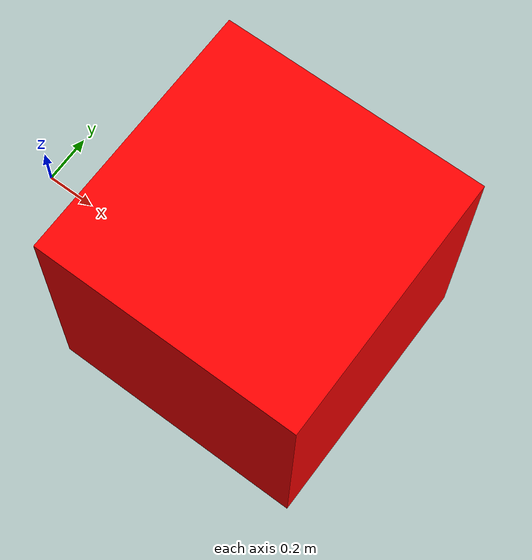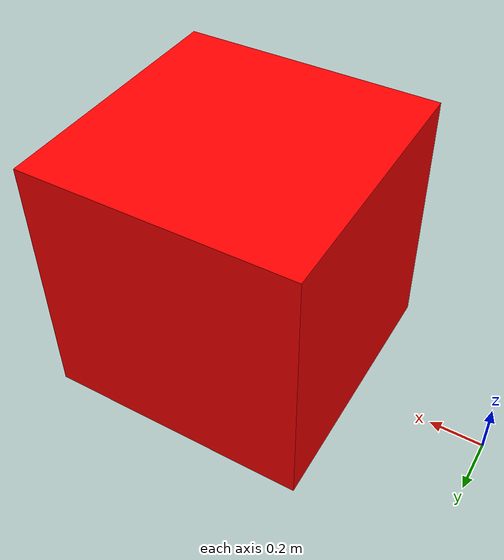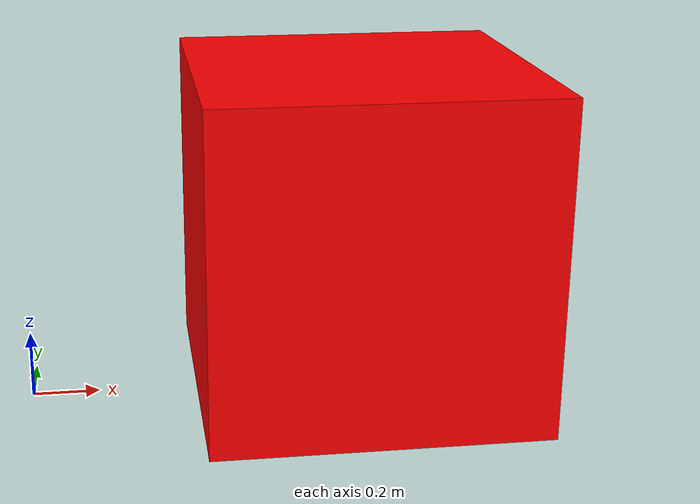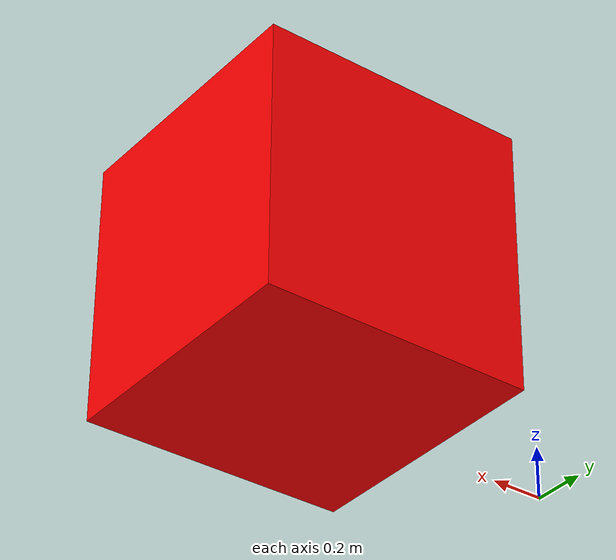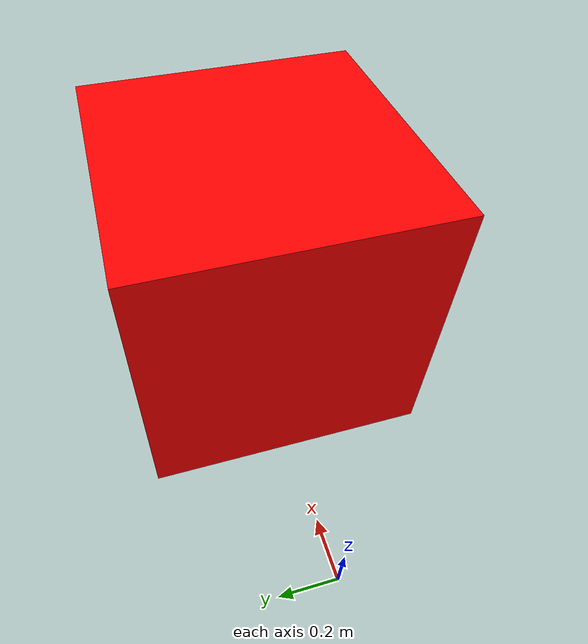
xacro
<?xml version="1.0"?>

<robot xmlns:xacro="http://www.ros.org/wiki/xacro" name="obstacle_model">

    <xacro:property name="obstacle_length" value="1.0" />
    <xacro:property name="obstacle_width" value="1.0" />
    <xacro:property name="obstacle_height" value="1.0" />
    <xacro:property name="obstacle_mass" value="10.0" />

    <!-- Define the world link -->
    <link name="world"/>

    <xacro:macro name="obstacle" params="name xpos ypos zpos length width height">
        <!-- Define the joint to attach the obstacle to the world -->
        <joint name="${name}_joint" type="fixed">
            <parent link="world"/>
            <child link="${name}_link"/>
            <origin rpy="0 0 0" xyz="${xpos} ${ypos} ${zpos}"/>
        </joint>

        <!-- Obstacle link -->
        <link name="${name}_link">
            <visual>
                <geometry>
                    <box size="${length} ${width} ${height}"/>
                </geometry>
                <material name="red"> <!-- Red color with name -->
                    <color rgba="1 0 0 1"/>
                </material>
                <origin rpy="0 0 0" xyz="0 0 ${height/2}"/>
            </visual>
            <collision>
                <geometry>
                    <box size="${length} ${width} ${height}"/>
                </geometry>
            </collision>
            <inertial>
                <mass value="${obstacle_mass}"/>
                <inertia ixx="1" ixy="0" ixz="0" iyy="1" iyz="0" izz="1"/>
            </inertial>
        </link>

        <!-- Add static property for Gazebo -->
        <gazebo>
            <static>true</static>
        </gazebo>
    </xacro:macro>

    <!-- Instantiate the obstacle -->
    <xacro:obstacle name="test_obstacle" xpos="1.0" ypos="0.0" zpos="0.0" length="1.0" width="1.0" height="1.0"/>

</robot>
